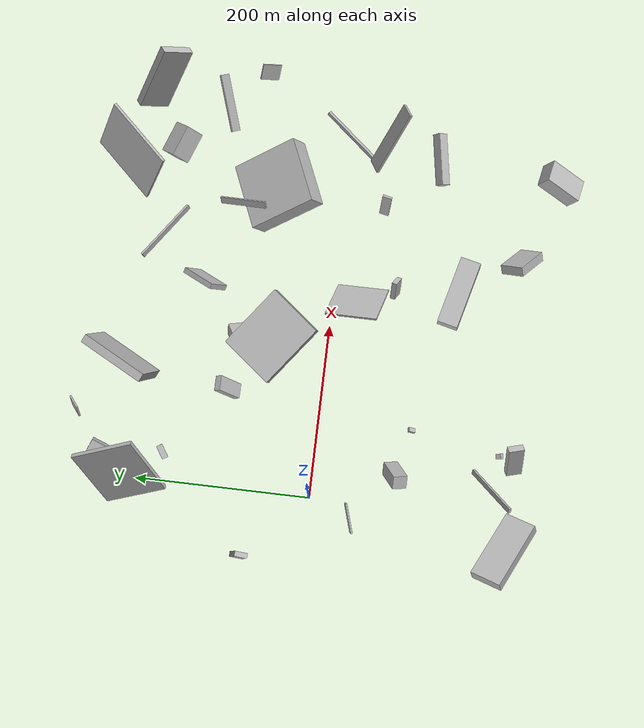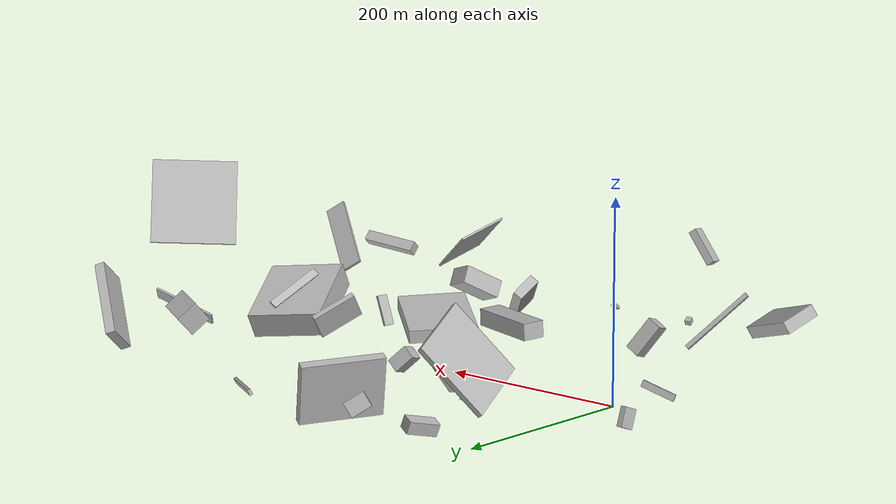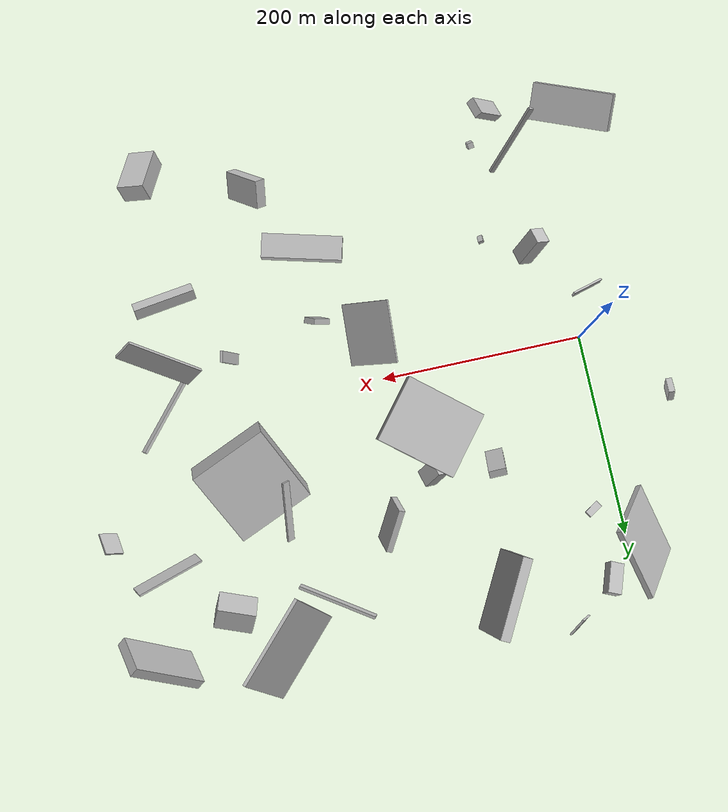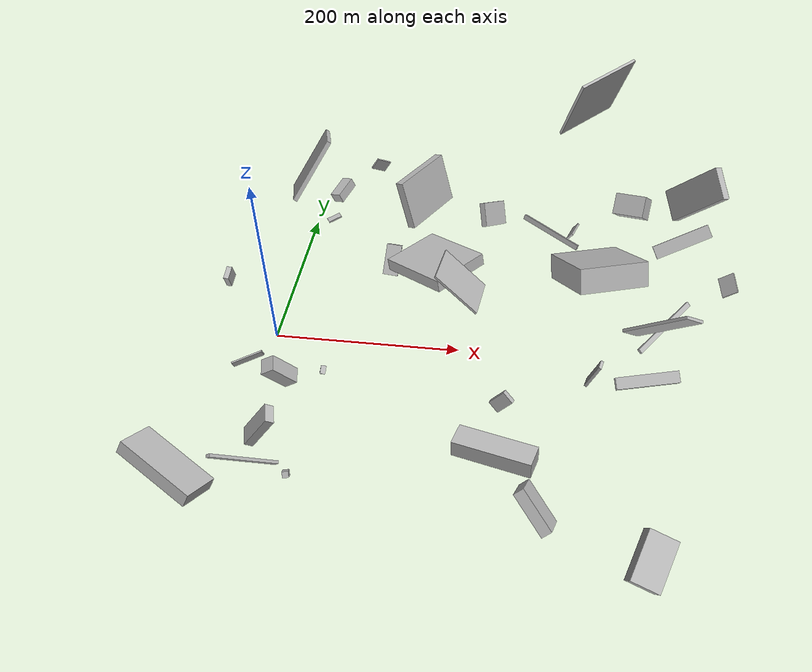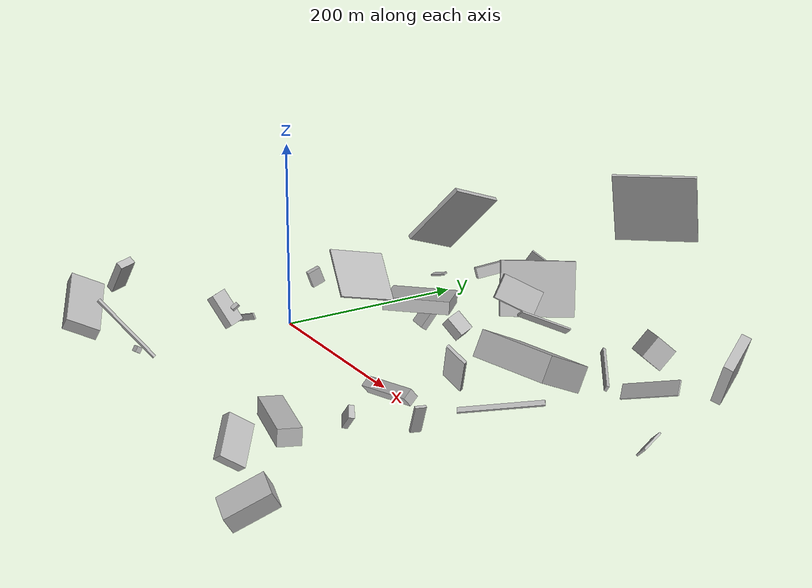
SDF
<sdf version="1.6">
 <world name="default">
  <scene>
   <sky><clouds><speed>12</speed></clouds></sky>
   <ambient>0.4 0.4 0.4 1</ambient>
   <background>0.7 0.7 0.7 1</background>
   <shadows>1</shadows>
  </scene>
  <gravity>0 0 -9.8066</gravity>
  <magnetic_field>6e-06 2.3e-05 -4.2e-05</magnetic_field>
  <physics default="0" name="default_physics" type="ode">
   <ode>
    <solver>
     <type>quick</type>
     <iters>10</iters>
     <sor>1.0</sor>
     <use_dynamic_moi_rescaling>0</use_dynamic_moi_rescaling>
    </solver>
    <constraints>
     <cfm>0</cfm>
     <erp>0.2</erp>
     <contact_max_correcting_vel>100</contact_max_correcting_vel>
     <contact_surface_layer>0.001</contact_surface_layer>
    </constraints>
   </ode>
   <max_step_size>0.004</max_step_size>
   <real_time_factor>1</real_time_factor>
   <real_time_update_rate>250</real_time_update_rate>
  </physics>
  <light name="sun" type="directional">
   <pose>0 0 10 0 0 0</pose>
   <diffuse>0.8 0.8 0.8 1</diffuse>
   <specular>0.2 0.2 0.2 1</specular>
   <attenuation>
    <range>1000</range>
    <constant>0.9</constant>
    <linear>0.01</linear>
    <quadratic>0.001</quadratic>
   </attenuation>
   <direction>-0.5 0.1 -0.9</direction>
  </light>
  <model name="building_1">
   <static>0</static>
   <pose>212.79989176055346 -134.0840559397497 17.539288024413473 -1.550446633671616 -0.059133464089091724 -1.8227328782572496</pose>
   <link name="link">
    <gravity>0</gravity>
    <pose>0 0 40.0 0 0 0</pose>
    <collision name="collision"><geometry><box><size>24 18 80</size></box></geometry></collision>
    <visual name="visual">
     <cast_shadows>0</cast_shadows>
     <geometry><box><size>24 18 80</size></box></geometry>
     <material>
      <script>
       <uri>model://HANNAS_wall/materials/scripts</uri>
       <uri>model://HANNAS_wall/materials/textures</uri>
       <name>vrc/HANNAS_wall</name>
      </script>
     </material>
    </visual>
   </link>
  </model>
  <model name="building_2">
   <static>0</static>
   <pose>147.31301733185256 35.43819118716516 71.92499589585344 1.7069910521512877 -1.3534983041360247 2.331496220298232</pose>
   <link name="link">
    <gravity>0</gravity>
    <pose>0 0 33.0 0 0 0</pose>
    <collision name="collision"><geometry><box><size>13 80 66</size></box></geometry></collision>
    <visual name="visual">
     <cast_shadows>0</cast_shadows>
     <geometry><box><size>13 80 66</size></box></geometry>
     <material>
      <script>
       <uri>model://HANNAS_wall/materials/scripts</uri>
       <uri>model://HANNAS_wall/materials/textures</uri>
       <name>vrc/HANNAS_wall</name>
      </script>
     </material>
    </visual>
   </link>
  </model>
  <model name="building_3">
   <static>0</static>
   <pose>341.98009998073326 81.40944527146986 76.46067746630946 2.667174900853153 0.09815626318960809 0.39430778131687383</pose>
   <link name="link">
    <gravity>0</gravity>
    <pose>0 0 13.5 0 0 0</pose>
    <collision name="collision"><geometry><box><size>77 80 27</size></box></geometry></collision>
    <visual name="visual">
     <cast_shadows>0</cast_shadows>
     <geometry><box><size>77 80 27</size></box></geometry>
     <material>
      <script>
       <uri>model://HANNAS_wall/materials/scripts</uri>
       <uri>model://HANNAS_wall/materials/textures</uri>
       <name>vrc/HANNAS_wall</name>
      </script>
     </material>
    </visual>
   </link>
  </model>
  <model name="building_4">
   <static>0</static>
   <pose>379.5387166343771 182.89171787900244 56.48440508263834 0.2315715778659346 -0.7112547251029546 -2.1031872701187115</pose>
   <link name="link">
    <gravity>0</gravity>
    <pose>0 0 12.0 0 0 0</pose>
    <collision name="collision"><geometry><box><size>23 36 24</size></box></geometry></collision>
    <visual name="visual">
     <cast_shadows>0</cast_shadows>
     <geometry><box><size>23 36 24</size></box></geometry>
     <material>
      <script>
       <uri>model://HANNAS_wall/materials/scripts</uri>
       <uri>model://HANNAS_wall/materials/textures</uri>
       <name>vrc/HANNAS_wall</name>
      </script>
     </material>
    </visual>
   </link>
  </model>
  <model name="building_5">
   <static>0</static>
   <pose>318.4149206175263 237.6492842976924 149.0702666962521 0.04582089590487914 0.3906707007135882 -0.7358268404973053</pose>
   <link name="link">
    <gravity>0</gravity>
    <pose>0 0 40.0 0 0 0</pose>
    <collision name="collision"><geometry><box><size>3 80 80</size></box></geometry></collision>
    <visual name="visual">
     <cast_shadows>0</cast_shadows>
     <geometry><box><size>3 80 80</size></box></geometry>
     <material>
      <script>
       <uri>model://HANNAS_wall/materials/scripts</uri>
       <uri>model://HANNAS_wall/materials/textures</uri>
       <name>vrc/HANNAS_wall</name>
      </script>
     </material>
    </visual>
   </link>
  </model>
  <model name="building_6">
   <static>0</static>
   <pose>31.9661901677834 166.18356301141506 33.99165401145799 -1.521725533474424 -0.22663770447011503 0.5479412935260936</pose>
   <link name="link">
    <gravity>0</gravity>
    <pose>0 0 3.5 0 0 0</pose>
    <collision name="collision"><geometry><box><size>16 2 7</size></box></geometry></collision>
    <visual name="visual">
     <cast_shadows>0</cast_shadows>
     <geometry><box><size>16 2 7</size></box></geometry>
     <material>
      <script>
       <uri>model://HANNAS_wall/materials/scripts</uri>
       <uri>model://HANNAS_wall/materials/textures</uri>
       <name>vrc/HANNAS_wall</name>
      </script>
     </material>
    </visual>
   </link>
  </model>
  <model name="building_7">
   <static>0</static>
   <pose>382.03799183176284 -246.06360771292657 27.745367906888564 -1.9060929782303284 0.4758835118686406 -1.9404289410087712</pose>
   <link name="link">
    <gravity>0</gravity>
    <pose>0 0 14.0 0 0 0</pose>
    <collision name="collision"><geometry><box><size>47 20 28</size></box></geometry></collision>
    <visual name="visual">
     <cast_shadows>0</cast_shadows>
     <geometry><box><size>47 20 28</size></box></geometry>
     <material>
      <script>
       <uri>model://HANNAS_wall/materials/scripts</uri>
       <uri>model://HANNAS_wall/materials/textures</uri>
       <name>vrc/HANNAS_wall</name>
      </script>
     </material>
    </visual>
   </link>
  </model>
  <model name="building_8">
   <static>0</static>
   <pose>23.285530223367335 237.53561979464703 30.348722303974803 2.8590580333254163 -0.20668164273377887 1.2124139178307054</pose>
   <link name="link">
    <gravity>0</gravity>
    <pose>0 0 6.0 0 0 0</pose>
    <collision name="collision"><geometry><box><size>30 14 12</size></box></geometry></collision>
    <visual name="visual">
     <cast_shadows>0</cast_shadows>
     <geometry><box><size>30 14 12</size></box></geometry>
     <material>
      <script>
       <uri>model://HANNAS_wall/materials/scripts</uri>
       <uri>model://HANNAS_wall/materials/textures</uri>
       <name>vrc/HANNAS_wall</name>
      </script>
     </material>
    </visual>
   </link>
  </model>
  <model name="building_9">
   <static>0</static>
   <pose>232.42014522839898 159.38437182312953 68.3700486823585 -0.6970398583314545 -0.9262054390851815 1.857983813779664</pose>
   <link name="link">
    <gravity>0</gravity>
    <pose>0 0 22.0 0 0 0</pose>
    <collision name="collision"><geometry><box><size>26 6 44</size></box></geometry></collision>
    <visual name="visual">
     <cast_shadows>0</cast_shadows>
     <geometry><box><size>26 6 44</size></box></geometry>
     <material>
      <script>
       <uri>model://HANNAS_wall/materials/scripts</uri>
       <uri>model://HANNAS_wall/materials/textures</uri>
       <name>vrc/HANNAS_wall</name>
      </script>
     </material>
    </visual>
   </link>
  </model>
  <model name="building_10">
   <static>0</static>
   <pose>259.6820735531995 -71.33872094564812 14.189435967824423 2.824620939595005 0.6585475422096697 -0.510248139136524</pose>
   <link name="link">
    <gravity>0</gravity>
    <pose>0 0 11.0 0 0 0</pose>
    <collision name="collision"><geometry><box><size>14 6 22</size></box></geometry></collision>
    <visual name="visual">
     <cast_shadows>0</cast_shadows>
     <geometry><box><size>14 6 22</size></box></geometry>
     <material>
      <script>
       <uri>model://HANNAS_wall/materials/scripts</uri>
       <uri>model://HANNAS_wall/materials/textures</uri>
       <name>vrc/HANNAS_wall</name>
      </script>
     </material>
    </visual>
   </link>
  </model>
  <model name="building_11">
   <static>0</static>
   <pose>336.59132687006263 -47.76459654664235 19.026776543419583 -0.03986280947405704 0.388236216367353 -0.23688041498214524</pose>
   <link name="link">
    <gravity>0</gravity>
    <pose>0 0 16.0 0 0 0</pose>
    <collision name="collision"><geometry><box><size>3 11 32</size></box></geometry></collision>
    <visual name="visual">
     <cast_shadows>0</cast_shadows>
     <geometry><box><size>3 11 32</size></box></geometry>
     <material>
      <script>
       <uri>model://HANNAS_wall/materials/scripts</uri>
       <uri>model://HANNAS_wall/materials/textures</uri>
       <name>vrc/HANNAS_wall</name>
      </script>
     </material>
    </visual>
   </link>
  </model>
  <model name="building_12">
   <static>0</static>
   <pose>-3.316503854820368 206.564601806982 84.29234379078272 2.5427265609075005 -0.8519769484730608 0.7564015706467082</pose>
   <link name="link">
    <gravity>0</gravity>
    <pose>0 0 2.5 0 0 0</pose>
    <collision name="collision"><geometry><box><size>80 73 5</size></box></geometry></collision>
    <visual name="visual">
     <cast_shadows>0</cast_shadows>
     <geometry><box><size>80 73 5</size></box></geometry>
     <material>
      <script>
       <uri>model://HANNAS_wall/materials/scripts</uri>
       <uri>model://HANNAS_wall/materials/textures</uri>
       <name>vrc/HANNAS_wall</name>
      </script>
     </material>
    </visual>
   </link>
  </model>
  <model name="building_13">
   <static>0</static>
   <pose>289.19634808896797 -213.1601434499787 27.002717848390926 -0.7780118111804987 0.6277837543892171 -0.7121027105851429</pose>
   <link name="link">
    <gravity>0</gravity>
    <pose>0 0 5.5 0 0 0</pose>
    <collision name="collision"><geometry><box><size>45 28 11</size></box></geometry></collision>
    <visual name="visual">
     <cast_shadows>0</cast_shadows>
     <geometry><box><size>45 28 11</size></box></geometry>
     <material>
      <script>
       <uri>model://HANNAS_wall/materials/scripts</uri>
       <uri>model://HANNAS_wall/materials/textures</uri>
       <name>vrc/HANNAS_wall</name>
      </script>
     </material>
    </visual>
   </link>
  </model>
  <model name="building_14">
   <static>0</static>
   <pose>64.94294425365183 270.7394468353906 36.644530993506514 -0.22673469694199985 -0.5730006025438534 -2.4339670815305614</pose>
   <link name="link">
    <gravity>0</gravity>
    <pose>0 0 7.5 0 0 0</pose>
    <collision name="collision"><geometry><box><size>21 2 15</size></box></geometry></collision>
    <visual name="visual">
     <cast_shadows>0</cast_shadows>
     <geometry><box><size>21 2 15</size></box></geometry>
     <material>
      <script>
       <uri>model://HANNAS_wall/materials/scripts</uri>
       <uri>model://HANNAS_wall/materials/textures</uri>
       <name>vrc/HANNAS_wall</name>
      </script>
     </material>
    </visual>
   </link>
  </model>
  <model name="building_15">
   <static>0</static>
   <pose>290.0592120653348 204.7935482008019 8.155120338802158 0.21426697162298047 -1.1054717881131968 0.793598285952814</pose>
   <link name="link">
    <gravity>0</gravity>
    <pose>0 0 1.5 0 0 0</pose>
    <collision name="collision"><geometry><box><size>6 80 3</size></box></geometry></collision>
    <visual name="visual">
     <cast_shadows>0</cast_shadows>
     <geometry><box><size>6 80 3</size></box></geometry>
     <material>
      <script>
       <uri>model://HANNAS_wall/materials/scripts</uri>
       <uri>model://HANNAS_wall/materials/textures</uri>
       <name>vrc/HANNAS_wall</name>
      </script>
     </material>
    </visual>
   </link>
  </model>
  <model name="building_16">
   <static>0</static>
   <pose>112.36026353941948 194.49713842072214 39.78409871762579 1.6074596475229193 0.2983626216602662 2.6600090387087536</pose>
   <link name="link">
    <gravity>0</gravity>
    <pose>0 0 40.0 0 0 0</pose>
    <collision name="collision"><geometry><box><size>10 60 80</size></box></geometry></collision>
    <visual name="visual">
     <cast_shadows>0</cast_shadows>
     <geometry><box><size>10 60 80</size></box></geometry>
     <material>
      <script>
       <uri>model://HANNAS_wall/materials/scripts</uri>
       <uri>model://HANNAS_wall/materials/textures</uri>
       <name>vrc/HANNAS_wall</name>
      </script>
     </material>
    </visual>
   </link>
  </model>
  <model name="building_17">
   <static>0</static>
   <pose>25.856724425904424 -199.4948812698166 43.33748141816935 0.8744786078694542 -0.47984557848962417 1.7940246312045818</pose>
   <link name="link">
    <gravity>0</gravity>
    <pose>0 0 2.5 0 0 0</pose>
    <collision name="collision"><geometry><box><size>3 80 5</size></box></geometry></collision>
    <visual name="visual">
     <cast_shadows>0</cast_shadows>
     <geometry><box><size>3 80 5</size></box></geometry>
     <material>
      <script>
       <uri>model://HANNAS_wall/materials/scripts</uri>
       <uri>model://HANNAS_wall/materials/textures</uri>
       <name>vrc/HANNAS_wall</name>
      </script>
     </material>
    </visual>
   </link>
  </model>
  <model name="building_18">
   <static>0</static>
   <pose>-18.957087117206616 -47.15315765575533 13.355257896611796 -2.9856462006117055 -0.33577922143482786 0.30215101366632924</pose>
   <link name="link">
    <gravity>0</gravity>
    <pose>0 0 3.5 0 0 0</pose>
    <collision name="collision"><geometry><box><size>35 2 7</size></box></geometry></collision>
    <visual name="visual">
     <cast_shadows>0</cast_shadows>
     <geometry><box><size>35 2 7</size></box></geometry>
     <material>
      <script>
       <uri>model://HANNAS_wall/materials/scripts</uri>
       <uri>model://HANNAS_wall/materials/textures</uri>
       <name>vrc/HANNAS_wall</name>
      </script>
     </material>
    </visual>
   </link>
  </model>
  <model name="building_19">
   <static>0</static>
   <pose>45.754284341744736 -215.58721258330038 99.23589329223974 0.1471485149543359 0.6031438485859607 0.3587838393325217</pose>
   <link name="link">
    <gravity>0</gravity>
    <pose>0 0 19.0 0 0 0</pose>
    <collision name="collision"><geometry><box><size>8 17 38</size></box></geometry></collision>
    <visual name="visual">
     <cast_shadows>0</cast_shadows>
     <geometry><box><size>8 17 38</size></box></geometry>
     <material>
      <script>
       <uri>model://HANNAS_wall/materials/scripts</uri>
       <uri>model://HANNAS_wall/materials/textures</uri>
       <name>vrc/HANNAS_wall</name>
      </script>
     </material>
    </visual>
   </link>
  </model>
  <model name="building_20">
   <static>0</static>
   <pose>207.22107335206434 -1.4342760605150056 120.09231132540651 1.2077515562269923 -0.8377296378698427 0.22504989444211043</pose>
   <link name="link">
    <gravity>0</gravity>
    <pose>0 0 28.5 0 0 0</pose>
    <collision name="collision"><geometry><box><size>2 53 57</size></box></geometry></collision>
    <visual name="visual">
     <cast_shadows>0</cast_shadows>
     <geometry><box><size>2 53 57</size></box></geometry>
     <material>
      <script>
       <uri>model://HANNAS_wall/materials/scripts</uri>
       <uri>model://HANNAS_wall/materials/textures</uri>
       <name>vrc/HANNAS_wall</name>
      </script>
     </material>
    </visual>
   </link>
  </model>
  <model name="building_21">
   <static>0</static>
   <pose>310.26657896002035 109.69816762473417 83.97028215685522 -0.5835433993885664 0.629395770231277 -0.5138426819379825</pose>
   <link name="link">
    <gravity>0</gravity>
    <pose>0 0 4.0 0 0 0</pose>
    <collision name="collision"><geometry><box><size>2 59 8</size></box></geometry></collision>
    <visual name="visual">
     <cast_shadows>0</cast_shadows>
     <geometry><box><size>2 59 8</size></box></geometry>
     <material>
      <script>
       <uri>model://HANNAS_wall/materials/scripts</uri>
       <uri>model://HANNAS_wall/materials/textures</uri>
       <name>vrc/HANNAS_wall</name>
      </script>
     </material>
    </visual>
   </link>
  </model>
  <model name="building_22">
   <static>0</static>
   <pose>-75.74696249904751 71.2379103327881 16.667311863419503 1.707455626572985 1.202261181895391 1.6440680552240832</pose>
   <link name="link">
    <gravity>0</gravity>
    <pose>0 0 3.0 0 0 0</pose>
    <collision name="collision"><geometry><box><size>19 15 6</size></box></geometry></collision>
    <visual name="visual">
     <cast_shadows>0</cast_shadows>
     <geometry><box><size>19 15 6</size></box></geometry>
     <material>
      <script>
       <uri>model://HANNAS_wall/materials/scripts</uri>
       <uri>model://HANNAS_wall/materials/textures</uri>
       <name>vrc/HANNAS_wall</name>
      </script>
     </material>
    </visual>
   </link>
  </model>
  <model name="building_23">
   <static>0</static>
   <pose>-42.42840110641981 -234.34338516739888 58.59874787487439 -2.572053805282018 -1.0567028642788885 0.5902584129120777</pose>
   <link name="link">
    <gravity>0</gravity>
    <pose>0 0 18.0 0 0 0</pose>
    <collision name="collision"><geometry><box><size>13 80 36</size></box></geometry></collision>
    <visual name="visual">
     <cast_shadows>0</cast_shadows>
     <geometry><box><size>13 80 36</size></box></geometry>
     <material>
      <script>
       <uri>model://HANNAS_wall/materials/scripts</uri>
       <uri>model://HANNAS_wall/materials/textures</uri>
       <name>vrc/HANNAS_wall</name>
      </script>
     </material>
    </visual>
   </link>
  </model>
  <model name="building_24">
   <static>0</static>
   <pose>407.9316627387079 134.10132457741278 44.97763137203053 -1.149579171046185 -0.624677933544031 -1.509578599146667</pose>
   <link name="link">
    <gravity>0</gravity>
    <pose>0 0 33.0 0 0 0</pose>
    <collision name="collision"><geometry><box><size>2 15 66</size></box></geometry></collision>
    <visual name="visual">
     <cast_shadows>0</cast_shadows>
     <geometry><box><size>2 15 66</size></box></geometry>
     <material>
      <script>
       <uri>model://HANNAS_wall/materials/scripts</uri>
       <uri>model://HANNAS_wall/materials/textures</uri>
       <name>vrc/HANNAS_wall</name>
      </script>
     </material>
    </visual>
   </link>
  </model>
  <model name="building_25">
   <static>0</static>
   <pose>167.81448942811485 102.13711482060623 31.408878589736197 0.7766500013220298 -0.24963676206316604 1.8389753575805736</pose>
   <link name="link">
    <gravity>0</gravity>
    <pose>0 0 7.0 0 0 0</pose>
    <collision name="collision"><geometry><box><size>17 22 14</size></box></geometry></collision>
    <visual name="visual">
     <cast_shadows>0</cast_shadows>
     <geometry><box><size>17 22 14</size></box></geometry>
     <material>
      <script>
       <uri>model://HANNAS_wall/materials/scripts</uri>
       <uri>model://HANNAS_wall/materials/textures</uri>
       <name>vrc/HANNAS_wall</name>
      </script>
     </material>
    </visual>
   </link>
  </model>
  <model name="building_26">
   <static>0</static>
   <pose>386.4478886188996 -108.10553626471392 95.62335652543786 -2.482635556272631 -0.11368031919266479 0.16451321524608836</pose>
   <link name="link">
    <gravity>0</gravity>
    <pose>0 0 5.5 0 0 0</pose>
    <collision name="collision"><geometry><box><size>58 11 11</size></box></geometry></collision>
    <visual name="visual">
     <cast_shadows>0</cast_shadows>
     <geometry><box><size>58 11 11</size></box></geometry>
     <material>
      <script>
       <uri>model://HANNAS_wall/materials/scripts</uri>
       <uri>model://HANNAS_wall/materials/textures</uri>
       <name>vrc/HANNAS_wall</name>
      </script>
     </material>
    </visual>
   </link>
  </model>
  <model name="building_27">
   <static>0</static>
   <pose>34.2974761260666 -99.48442608890161 43.766312386930004 1.243902270294205 0.5521806685431848 -3.1247597548662958</pose>
   <link name="link">
    <gravity>0</gravity>
    <pose>0 0 8.0 0 0 0</pose>
    <collision name="collision"><geometry><box><size>15 36 16</size></box></geometry></collision>
    <visual name="visual">
     <cast_shadows>0</cast_shadows>
     <geometry><box><size>15 36 16</size></box></geometry>
     <material>
      <script>
       <uri>model://HANNAS_wall/materials/scripts</uri>
       <uri>model://HANNAS_wall/materials/textures</uri>
       <name>vrc/HANNAS_wall</name>
      </script>
     </material>
    </visual>
   </link>
  </model>
  <model name="building_28">
   <static>0</static>
   <pose>460.6411840762947 224.55576365497052 64.01977436319348 1.0383013688367457 -0.8108241661081282 -0.533289197912507</pose>
   <link name="link">
    <gravity>0</gravity>
    <pose>0 0 5.0 0 0 0</pose>
    <collision name="collision"><geometry><box><size>80 38 10</size></box></geometry></collision>
    <visual name="visual">
     <cast_shadows>0</cast_shadows>
     <geometry><box><size>80 38 10</size></box></geometry>
     <material>
      <script>
       <uri>model://HANNAS_wall/materials/scripts</uri>
       <uri>model://HANNAS_wall/materials/textures</uri>
       <name>vrc/HANNAS_wall</name>
      </script>
     </material>
    </visual>
   </link>
  </model>
  <model name="building_29">
   <static>0</static>
   <pose>82.35851496922893 -105.20027603217198 68.75631847924166 2.5243115995909164 -0.28757465935893817 -3.0021185665837975</pose>
   <link name="link">
    <gravity>0</gravity>
    <pose>0 0 1.5 0 0 0</pose>
    <collision name="collision"><geometry><box><size>5 8 3</size></box></geometry></collision>
    <visual name="visual">
     <cast_shadows>0</cast_shadows>
     <geometry><box><size>5 8 3</size></box></geometry>
     <material>
      <script>
       <uri>model://HANNAS_wall/materials/scripts</uri>
       <uri>model://HANNAS_wall/materials/textures</uri>
       <name>vrc/HANNAS_wall</name>
      </script>
     </material>
    </visual>
   </link>
  </model>
  <model name="building_30">
   <static>0</static>
   <pose>385.7190588606265 -33.89431247257684 55.85112705888072 1.3629779326297802 -0.7427674061257753 2.6114102873920824</pose>
   <link name="link">
    <gravity>0</gravity>
    <pose>0 0 40.0 0 0 0</pose>
    <collision name="collision"><geometry><box><size>5 3 80</size></box></geometry></collision>
    <visual name="visual">
     <cast_shadows>0</cast_shadows>
     <geometry><box><size>5 3 80</size></box></geometry>
     <material>
      <script>
       <uri>model://HANNAS_wall/materials/scripts</uri>
       <uri>model://HANNAS_wall/materials/textures</uri>
       <name>vrc/HANNAS_wall</name>
      </script>
     </material>
    </visual>
   </link>
  </model>
  <model name="building_31">
   <static>0</static>
   <pose>373.59823009938253 -31.13874332279042 78.46441328511062 -0.6918932722160358 0.5520157833175958 -1.5238378346731998</pose>
   <link name="link">
    <gravity>0</gravity>
    <pose>0 0 40.0 0 0 0</pose>
    <collision name="collision"><geometry><box><size>3 22 80</size></box></geometry></collision>
    <visual name="visual">
     <cast_shadows>0</cast_shadows>
     <geometry><box><size>3 22 80</size></box></geometry>
     <material>
      <script>
       <uri>model://HANNAS_wall/materials/scripts</uri>
       <uri>model://HANNAS_wall/materials/textures</uri>
       <name>vrc/HANNAS_wall</name>
      </script>
     </material>
    </visual>
   </link>
  </model>
  <model name="building_32">
   <static>0</static>
   <pose>111.71470286923712 102.7554825950776 32.53144086718211 -2.938381255743208 -0.9213978721208521 1.4186592312517803</pose>
   <link name="link">
    <gravity>0</gravity>
    <pose>0 0 4.0 0 0 0</pose>
    <collision name="collision"><geometry><box><size>35 17 8</size></box></geometry></collision>
    <visual name="visual">
     <cast_shadows>0</cast_shadows>
     <geometry><box><size>35 17 8</size></box></geometry>
     <material>
      <script>
       <uri>model://HANNAS_wall/materials/scripts</uri>
       <uri>model://HANNAS_wall/materials/textures</uri>
       <name>vrc/HANNAS_wall</name>
      </script>
     </material>
    </visual>
   </link>
  </model>
  <model name="building_33">
   <static>0</static>
   <pose>482.2896441212434 104.46652667662106 25.290993040101466 0.5557823900913527 0.6875464836079489 0.6071411638512012</pose>
   <link name="link">
    <gravity>0</gravity>
    <pose>0 0 9.5 0 0 0</pose>
    <collision name="collision"><geometry><box><size>2 23 19</size></box></geometry></collision>
    <visual name="visual">
     <cast_shadows>0</cast_shadows>
     <geometry><box><size>2 23 19</size></box></geometry>
     <material>
      <script>
       <uri>model://HANNAS_wall/materials/scripts</uri>
       <uri>model://HANNAS_wall/materials/textures</uri>
       <name>vrc/HANNAS_wall</name>
      </script>
     </material>
    </visual>
   </link>
  </model>
  <model name="building_34">
   <static>0</static>
   <pose>64.78035903713797 -206.5272657516892 37.48300689821856 -1.4710355840986125 -0.601546851656944 -1.4389580589525357</pose>
   <link name="link">
    <gravity>0</gravity>
    <pose>0 0 3.0 0 0 0</pose>
    <collision name="collision"><geometry><box><size>6 6 6</size></box></geometry></collision>
    <visual name="visual">
     <cast_shadows>0</cast_shadows>
     <geometry><box><size>6 6 6</size></box></geometry>
     <material>
      <script>
       <uri>model://HANNAS_wall/materials/scripts</uri>
       <uri>model://HANNAS_wall/materials/textures</uri>
       <name>vrc/HANNAS_wall</name>
      </script>
     </material>
    </visual>
   </link>
  </model>
 </world>
</sdf>
